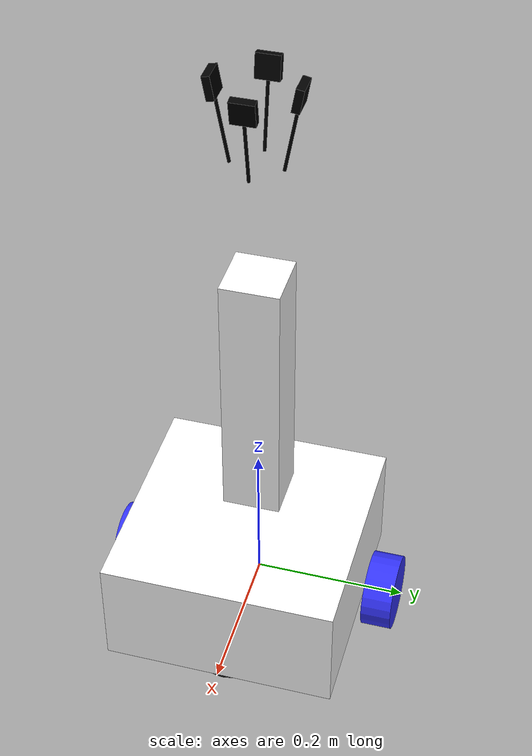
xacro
<?xml version="1.0"?>
<robot xmlns:xacro="http://www.ros.org/wiki/xacro"  name="robot">

    <xacro:include filename="robot_core.xacro" />
    <xacro:include filename="gazebo_control.xacro" />
    <xacro:include filename="camera.xacro" />
    <xacro:include filename="camera1.xacro" />
    <xacro:include filename="camera2.xacro" />
    <xacro:include filename="camera3.xacro" />

</robot>

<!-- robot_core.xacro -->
<robot xmlns:xacro="http://www.ros.org/wiki/xacro" >

    <xacro:include filename="inertial_macros.xacro"/>

    <material name="white">
        <color rgba="1 1 1 1" />
    </material>

    <material name="orange">
        <color rgba="1 0.3 0.1 1"/>
    </material>

    <material name="blue">
        <color rgba="0.2 0.2 1 1"/>
    </material>

    <material name="black">
        <color rgba="0 0 0 1"/>
    </material>

    <!-- BASE LINK -->

    <link name="base_link">

    </link>

    <!-- CHASSIS LINK -->

    <joint name="chassis_joint" type="fixed">
        <parent link="base_link"/>
        <child link="chassis"/>
        <origin xyz="-0.1 0 0"/>
    </joint>

    <link name="chassis">
        <visual>
            <origin xyz="0.15 0 0.075"/>
            <geometry>
                <box size="0.3 0.3 0.15"/>
            </geometry>
            <material name="white"/>
        </visual>
        <collision>
            <origin xyz="0.15 0 0.075"/>
            <geometry>
                <box size="0.3 0.3 0.15"/>
            </geometry>
        </collision>
        <xacro:inertial_box mass="0.5" x="0.3" y="0.3" z="0.15">
            <origin xyz="0.15 0 0.075" rpy="0 0 0"/>
        </xacro:inertial_box>
    </link>

    <gazebo reference ='mount'>
        <material>Gazebo/White</material>
    </gazebo>

    <joint name="mount_joint" type="fixed">
        <parent link="base_link"/>
        <child link="mount"/>
        <origin xyz="0 0 0"/>
    </joint>

    <link name="mount">
        <visual>
            <origin xyz="0.0 0 0.3"/>
            <geometry>
                <box size="0.075 0.075 0.4"/>
            </geometry>
            <material name="white"/>
        </visual>
        <collision>
            <origin xyz="0.0 0 0.3"/>
            <geometry>
                <box size="0.075 0.075 0.4"/>
            </geometry>
        </collision>
    </link>

    <gazebo reference ='mount'>
        <material>Gazebo/White</material>
    </gazebo>

    <!-- LEFT WHEEL LINK -->

    <joint name="left_wheel_joint" type="continuous">
        <parent link="base_link"/>
        <child link="left_wheel"/>
        <origin xyz="0 0.175 0" rpy="-${pi/2} 0 0" />
        <axis xyz="0 0 1"/>
    </joint>

    <link name="left_wheel">
        <visual>
            <geometry>
                <cylinder radius="0.05" length="0.04"/>
            </geometry>
            <material name="blue"/>
        </visual>
        <collision>
            <geometry>
                <cylinder radius="0.05" length="0.04"/>
            </geometry>
        </collision>
        <xacro:inertial_cylinder mass="0.1" length="0.04" radius="0.05">
            <origin xyz="0 0 0" rpy="0 0 0"/>
        </xacro:inertial_cylinder>
    </link>

    <gazebo reference ='left_wheel'>
        <material>Gazebo/Green</material>
    </gazebo>

    <!-- RIGHT WHEEL LINK -->

    <joint name="right_wheel_joint" type="continuous">
        <parent link="base_link"/>
        <child link="right_wheel"/>
        <origin xyz="0 -0.175 0" rpy="${pi/2} 0 0" />
        <axis xyz="0 0 -1"/>
    </joint>

    <link name="right_wheel">
        <visual>
            <geometry>
                <cylinder radius="0.05" length="0.04"/>
            </geometry>
            <material name="blue"/>
        </visual>
        <collision>
            <geometry>
                <cylinder radius="0.05" length="0.04"/>
            </geometry>
        </collision>
        <xacro:inertial_cylinder mass="0.1" length="0.04" radius="0.05">
            <origin xyz="0 0 0" rpy="0 0 0"/>
        </xacro:inertial_cylinder>
    </link>

    <gazebo reference ='right_wheel'>
        <material>Gazebo/Green</material>
    </gazebo>

    <!-- CASTER WHEEL LINK -->

    <joint name="caster_wheel_joint" type="fixed">
        <parent link="chassis"/>
        <child link="caster_wheel"/>
        <origin xyz="0.24 0 0"/>
    </joint>

    <link name="caster_wheel">
        <visual>
            <geometry>
                <sphere radius="0.05"/>
            </geometry>
            <material name="black"/>
        </visual>
        <collision>
            <geometry>
                <sphere radius="0.05"/>
            </geometry>
        </collision>
        <xacro:inertial_sphere mass="0.1" radius="0.05">
            <origin xyz="0 0 0" rpy="0 0 0"/>
        </xacro:inertial_sphere>
    </link>

    <gazebo reference ='caster_wheel'>
        <material>Gazebo/Black</material>
        <mu1 value="0.001"/>
        <mu2 value="0.001"/>
    </gazebo>

</robot>

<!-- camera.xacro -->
<robot xmlns:xacro="http://www.ros.org/wiki/xacro" >

    <joint name="camera_joint" type="fixed">
        <parent link="mount"/>
        <child link="camera_link"/>
        <origin xyz="0.05 0 0.75" rpy="0 0.18 0"/>
    </joint>

    <link name="camera_link">
        <visual>
            <geometry>
                <box size="0.010 0.03 0.03"/>
            </geometry>
            <material name="black"/>
        </visual>
        <visual>
            <origin xyz="0 0 -0.05"/>
            <geometry>
                <cylinder radius="0.002" length="0.1"/>
            </geometry>
            <material name="black"/>
        </visual>
    </link>

    <joint name="camera_optical_joint" type="fixed">
        <parent link="camera_link"/>
        <child link="camera_link_optical"/>
        <origin xyz="0 0 0" rpy="${-pi/2} 0 ${-pi/2}"/>
    </joint>

    <link name="camera_link_optical"></link>

    <gazebo reference="camera_link">
        <material>Gazebo/Black</material>

        <sensor name="camera" type="depth">
            <pose> 0 0 0 0 0 0 </pose>
            <visualize>true</visualize>
            <update_rate>10</update_rate>
            <camera>
                <horizontal_fov>1.571</horizontal_fov>
                <image>
                    <format>R8G8B8</format>
                    <width>640</width>
                    <height>480</height>
                </image>
                <clip>
                    <near>0.05</near>
                    <far>23.0</far>
                </clip>
            </camera>
            <plugin name="camera_plugin" filename="libgazebo_ros_camera.so">
		  <baseline>0.2</baseline>
		  <alwaysOn>true</alwaysOn>
		  <updateRate>0.0</updateRate>
		  <cameraName>camera_ir</cameraName>
		  <imageTopicName>/camera/color/image_raw</imageTopicName>
		  <cameraInfoTopicName>/camera/color/camera_info</cameraInfoTopicName>
		  <depthImageTopicName>/camera/depth/image_raw</depthImageTopicName>
		  <depthImageCameraInfoTopicName>/camera/depth/camera_info</depthImageCameraInfoTopicName>
		  <pointCloudTopicName>/camera/depth/points</pointCloudTopicName>
		  <frameName>camera_link_optical</frameName>
		  <pointCloudCutoff>0.5</pointCloudCutoff>
		  <pointCloudCutoffMax>3.0</pointCloudCutoffMax>
		  <distortionK1>0</distortionK1>
		  <distortionK2>0</distortionK2>
		  <distortionK3>0</distortionK3>
		  <distortionT1>0</distortionT1>
		  <distortionT2>0</distortionT2>
		  <CxPrime>0</CxPrime>
		  <Cx>0</Cx>
		  <Cy>0</Cy>
		  <focalLength>0</focalLength>
		  <hackBaseline>0</hackBaseline>
	     </plugin>
        </sensor>
    </gazebo>

</robot>

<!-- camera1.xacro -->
<robot xmlns:xacro="http://www.ros.org/wiki/xacro" >

    <joint name="camera_joint_1" type="fixed">
        <parent link="mount"/>
        <child link="camera_link_1"/>
        <origin xyz="0 0.05 0.75" rpy="0 0.18 ${pi/2}"/>
    </joint>

    <link name="camera_link_1">
        <visual>
            <geometry>
                <box size="0.010 0.03 0.03"/>
            </geometry>
            <material name="black"/>
        </visual>
        <visual>
            <origin xyz="0 0 -0.05"/>
            <geometry>
                <cylinder radius="0.002" length="0.1"/>
            </geometry>
            <material name="black"/>
        </visual>
    </link>

    <joint name="camera_optical_joint_1" type="fixed">
        <parent link="camera_link_1"/>
        <child link="camera_link_optical_1"/>
        <origin xyz="0 0 0" rpy="${-pi/2} 0 ${-pi/2}"/>
    </joint>

    <link name="camera_link_optical_1"></link>

    <gazebo reference="camera_link_1">
        <material>Gazebo/Black</material>

        <sensor name="camera_1" type="depth">
            <pose> 0 0 0 0 0 0 </pose>
            <visualize>true</visualize>
            <update_rate>10</update_rate>
            <camera>
                <horizontal_fov>1.571</horizontal_fov>
                <image>
                    <format>R8G8B8</format>
                    <width>640</width>
                    <height>480</height>
                </image>
                <clip>
                    <near>0.05</near>
                    <far>80.0</far>
                </clip>
            </camera>
            <plugin name="camera_plugin_1" filename="libgazebo_ros_camera.so">
		  <baseline>0.2</baseline>
		  <alwaysOn>true</alwaysOn>
		  <updateRate>0.0</updateRate>
		  <cameraName>camera_ir</cameraName>
		  <imageTopicName>/camera/color/image_raw</imageTopicName>
		  <cameraInfoTopicName>/camera/color/camera_info</cameraInfoTopicName>
		  <depthImageTopicName>/camera/depth/image_raw</depthImageTopicName>
		  <depthImageCameraInfoTopicName>/camera/depth/camera_info</depthImageCameraInfoTopicName>
		  <pointCloudTopicName>/camera/depth/points</pointCloudTopicName>
		  <frameName>camera_link_optical</frameName>
		  <pointCloudCutoff>0.5</pointCloudCutoff>
		  <pointCloudCutoffMax>3.0</pointCloudCutoffMax>
		  <distortionK1>0</distortionK1>
		  <distortionK2>0</distortionK2>
		  <distortionK3>0</distortionK3>
		  <distortionT1>0</distortionT1>
		  <distortionT2>0</distortionT2>
		  <CxPrime>0</CxPrime>
		  <Cx>0</Cx>
		  <Cy>0</Cy>
		  <focalLength>0</focalLength>
		  <hackBaseline>0</hackBaseline>
	     </plugin>
        </sensor>
    </gazebo>

</robot>

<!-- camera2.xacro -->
<robot xmlns:xacro="http://www.ros.org/wiki/xacro" >

    <joint name="camera_joint_2" type="fixed">
        <parent link="mount"/>
        <child link="camera_link_2"/>
        <origin xyz="-0.05 0 0.75" rpy="0 0.18 ${pi}"/>
    </joint>

    <link name="camera_link_2">
        <visual>
            <geometry>
                <box size="0.010 0.03 0.03"/>
            </geometry>
            <material name="black"/>
        </visual>
        <visual>
            <origin xyz="0 0 -0.05"/>
            <geometry>
                <cylinder radius="0.002" length="0.1"/>
            </geometry>
            <material name="black"/>
        </visual>
    </link>

    <joint name="camera_optical_joint_2" type="fixed">
        <parent link="camera_link_2"/>
        <child link="camera_link_optical_2"/>
        <origin xyz="0 0 0" rpy="${-pi/2} 0 ${-pi/2}"/>
    </joint>

    <link name="camera_link_optical_2"></link>

    <gazebo reference="camera_link_2">
        <material>Gazebo/Black</material>

        <sensor name="camera_2" type="depth">
            <pose> 0 0 0 0 0 0 </pose>
            <visualize>true</visualize>
            <update_rate>10</update_rate>
            <camera>
                <horizontal_fov>1.571</horizontal_fov>
                <image>
                    <format>R8G8B8</format>
                    <width>640</width>
                    <height>480</height>
                </image>
                <clip>
                    <near>0.05</near>
                    <far>80.0</far>
                </clip>
            </camera>
            <plugin name="camera_plugin_2" filename="libgazebo_ros_camera.so">
		  <baseline>0.2</baseline>
		  <alwaysOn>true</alwaysOn>
		  <updateRate>0.0</updateRate>
		  <cameraName>camera_ir</cameraName>
		  <imageTopicName>/camera/color/image_raw</imageTopicName>
		  <cameraInfoTopicName>/camera/color/camera_info</cameraInfoTopicName>
		  <depthImageTopicName>/camera/depth/image_raw</depthImageTopicName>
		  <depthImageCameraInfoTopicName>/camera/depth/camera_info</depthImageCameraInfoTopicName>
		  <pointCloudTopicName>/camera/depth/points</pointCloudTopicName>
		  <frameName>camera_link_optical</frameName>
		  <pointCloudCutoff>0.5</pointCloudCutoff>
		  <pointCloudCutoffMax>3.0</pointCloudCutoffMax>
		  <distortionK1>0</distortionK1>
		  <distortionK2>0</distortionK2>
		  <distortionK3>0</distortionK3>
		  <distortionT1>0</distortionT1>
		  <distortionT2>0</distortionT2>
		  <CxPrime>0</CxPrime>
		  <Cx>0</Cx>
		  <Cy>0</Cy>
		  <focalLength>0</focalLength>
		  <hackBaseline>0</hackBaseline>
	     </plugin>
        </sensor>
    </gazebo>

</robot>

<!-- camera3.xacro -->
<robot xmlns:xacro="http://www.ros.org/wiki/xacro" >

    <joint name="camera_joint_3" type="fixed">
        <parent link="mount"/>
        <child link="camera_link_3"/>
        <origin xyz="0 -0.05 0.75" rpy="0 0.18 ${-pi/2}"/>
    </joint>

    <link name="camera_link_3">
        <visual>
            <geometry>
                <box size="0.010 0.03 0.03"/>
            </geometry>
            <material name="black"/>
        </visual>
        <visual>
            <origin xyz="0 0 -0.05"/>
            <geometry>
                <cylinder radius="0.002" length="0.1"/>
            </geometry>
            <material name="black"/>
        </visual>
    </link>

    <joint name="camera_optical_joint_3" type="fixed">
        <parent link="camera_link_3"/>
        <child link="camera_link_optical_3"/>
        <origin xyz="0 0 0" rpy="${-pi/2} 0 ${-pi/2}"/>
    </joint>

    <link name="camera_link_optical_3"></link>

    <gazebo reference="camera_link_3">
        <material>Gazebo/Black</material>

        <sensor name="camera_3" type="depth">
            <pose> 0 0 0 0 0 0 </pose>
            <visualize>true</visualize>
            <update_rate>10</update_rate>
            <camera>
                <horizontal_fov>1.571</horizontal_fov>
                <image>
                    <format>R8G8B8</format>
                    <width>640</width>
                    <height>480</height>
                </image>
                <clip>
                    <near>0.05</near>
                    <far>80.0</far>
                </clip>
            </camera>
            <plugin name="camera_plugin_3" filename="libgazebo_ros_camera.so">
		  <baseline>0.2</baseline>
		  <alwaysOn>true</alwaysOn>
		  <updateRate>0.0</updateRate>
		  <cameraName>camera_ir</cameraName>
		  <imageTopicName>/camera/color/image_raw</imageTopicName>
		  <cameraInfoTopicName>/camera/color/camera_info</cameraInfoTopicName>
		  <depthImageTopicName>/camera/depth/image_raw</depthImageTopicName>
		  <depthImageCameraInfoTopicName>/camera/depth/camera_info</depthImageCameraInfoTopicName>
		  <pointCloudTopicName>/camera/depth/points</pointCloudTopicName>
		  <frameName>camera_link_optical</frameName>
		  <pointCloudCutoff>0.5</pointCloudCutoff>
		  <pointCloudCutoffMax>3.0</pointCloudCutoffMax>
		  <distortionK1>0</distortionK1>
		  <distortionK2>0</distortionK2>
		  <distortionK3>0</distortionK3>
		  <distortionT1>0</distortionT1>
		  <distortionT2>0</distortionT2>
		  <CxPrime>0</CxPrime>
		  <Cx>0</Cx>
		  <Cy>0</Cy>
		  <focalLength>0</focalLength>
		  <hackBaseline>0</hackBaseline>
	     </plugin>
        </sensor>
    </gazebo>

</robot>
